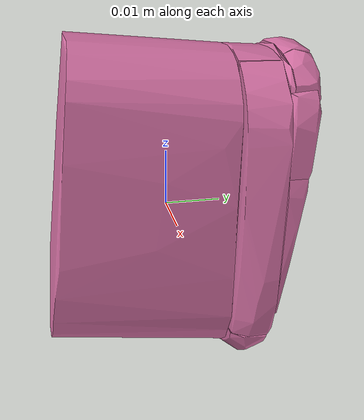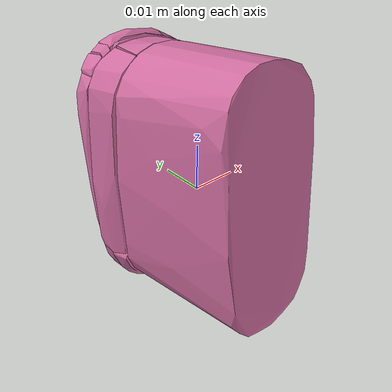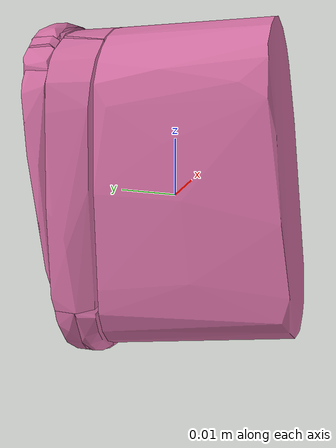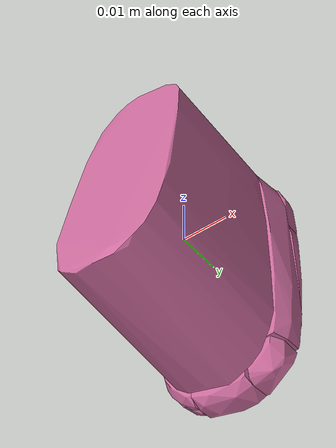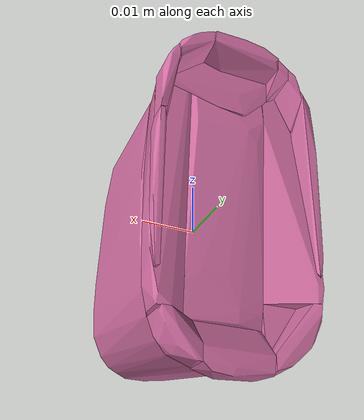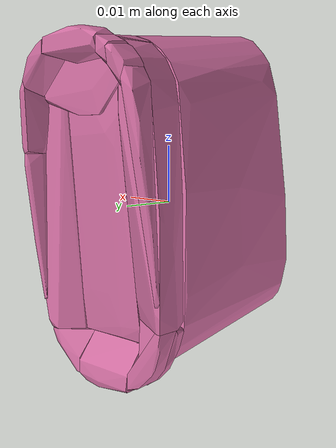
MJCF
<mujoco model="InstantSoup">
  <asset>
    <mesh file="meshes/InstantSoup/InstantSoup_0.stl" name="InstantSoup_0"/>
    <mesh file="meshes/InstantSoup/InstantSoup_1.stl" name="InstantSoup_1"/>
    <mesh file="meshes/InstantSoup/InstantSoup_2.stl" name="InstantSoup_2"/>
    <mesh file="meshes/InstantSoup/InstantSoup_3.stl" name="InstantSoup_3"/>
    <mesh file="meshes/InstantSoup/InstantSoup_4.stl" name="InstantSoup_4"/>
    <mesh file="meshes/InstantSoup/InstantSoup_5.stl" name="InstantSoup_5"/>
    <mesh file="meshes/InstantSoup/InstantSoup_6.stl" name="InstantSoup_6"/>
    <mesh file="meshes/InstantSoup/InstantSoup_7.stl" name="InstantSoup_7"/>
    <mesh file="meshes/InstantSoup/InstantSoup_8.stl" name="InstantSoup_8"/>
    <mesh file="meshes/InstantSoup/InstantSoup_9.stl" name="InstantSoup_9"/>
    <mesh file="meshes/InstantSoup/InstantSoup_10.stl" name="InstantSoup_10"/>
    <mesh file="meshes/InstantSoup/InstantSoup_11.stl" name="InstantSoup_11"/>
    <mesh file="meshes/InstantSoup/InstantSoup_12.stl" name="InstantSoup_12"/>
    <mesh file="meshes/InstantSoup/InstantSoup_13.stl" name="InstantSoup_13"/>
    <mesh file="meshes/InstantSoup/InstantSoup_14.stl" name="InstantSoup_14"/>
    <mesh file="meshes/InstantSoup/InstantSoup_15.stl" name="InstantSoup_15"/>
  </asset>
  <worldbody>
    <body>
      <body name="collision">
        <geom condim="4" density="100" friction="1.5 0.3 0.1" group="1" mesh="InstantSoup_0" pos="0 0 0" rgba="0.82 0.43 0.63 1" solimp="0.998 0.998 0.001" solref="0.002 1" type="mesh"/>
        <geom condim="4" density="100" friction="1.5 0.3 0.1" group="1" mesh="InstantSoup_1" pos="0 0 0" rgba="0.82 0.43 0.63 1" solimp="0.998 0.998 0.001" solref="0.002 1" type="mesh"/>
        <geom condim="4" density="100" friction="1.5 0.3 0.1" group="1" mesh="InstantSoup_2" pos="0 0 0" rgba="0.82 0.43 0.63 1" solimp="0.998 0.998 0.001" solref="0.002 1" type="mesh"/>
        <geom condim="4" density="100" friction="1.5 0.3 0.1" group="1" mesh="InstantSoup_3" pos="0 0 0" rgba="0.82 0.43 0.63 1" solimp="0.998 0.998 0.001" solref="0.002 1" type="mesh"/>
        <geom condim="4" density="100" friction="1.5 0.3 0.1" group="1" mesh="InstantSoup_4" pos="0 0 0" rgba="0.82 0.43 0.63 1" solimp="0.998 0.998 0.001" solref="0.002 1" type="mesh"/>
        <geom condim="4" density="100" friction="1.5 0.3 0.1" group="1" mesh="InstantSoup_5" pos="0 0 0" rgba="0.82 0.43 0.63 1" solimp="0.998 0.998 0.001" solref="0.002 1" type="mesh"/>
        <geom condim="4" density="100" friction="1.5 0.3 0.1" group="1" mesh="InstantSoup_6" pos="0 0 0" rgba="0.82 0.43 0.63 1" solimp="0.998 0.998 0.001" solref="0.002 1" type="mesh"/>
        <geom condim="4" density="100" friction="1.5 0.3 0.1" group="1" mesh="InstantSoup_7" pos="0 0 0" rgba="0.82 0.43 0.63 1" solimp="0.998 0.998 0.001" solref="0.002 1" type="mesh"/>
        <geom condim="4" density="100" friction="1.5 0.3 0.1" group="1" mesh="InstantSoup_8" pos="0 0 0" rgba="0.82 0.43 0.63 1" solimp="0.998 0.998 0.001" solref="0.002 1" type="mesh"/>
        <geom condim="4" density="100" friction="1.5 0.3 0.1" group="1" mesh="InstantSoup_9" pos="0 0 0" rgba="0.82 0.43 0.63 1" solimp="0.998 0.998 0.001" solref="0.002 1" type="mesh"/>
        <geom condim="4" density="100" friction="1.5 0.3 0.1" group="1" mesh="InstantSoup_10" pos="0 0 0" rgba="0.82 0.43 0.63 1" solimp="0.998 0.998 0.001" solref="0.002 1" type="mesh"/>
        <geom condim="4" density="100" friction="1.5 0.3 0.1" group="1" mesh="InstantSoup_11" pos="0 0 0" rgba="0.82 0.43 0.63 1" solimp="0.998 0.998 0.001" solref="0.002 1" type="mesh"/>
        <geom condim="4" density="100" friction="1.5 0.3 0.1" group="1" mesh="InstantSoup_12" pos="0 0 0" rgba="0.82 0.43 0.63 1" solimp="0.998 0.998 0.001" solref="0.002 1" type="mesh"/>
        <geom condim="4" density="100" friction="1.5 0.3 0.1" group="1" mesh="InstantSoup_13" pos="0 0 0" rgba="0.82 0.43 0.63 1" solimp="0.998 0.998 0.001" solref="0.002 1" type="mesh"/>
        <geom condim="4" density="100" friction="1.5 0.3 0.1" group="1" mesh="InstantSoup_14" pos="0 0 0" rgba="0.82 0.43 0.63 1" solimp="0.998 0.998 0.001" solref="0.002 1" type="mesh"/>
        <geom condim="4" density="100" friction="1.5 0.3 0.1" group="1" mesh="InstantSoup_15" pos="0 0 0" rgba="0.82 0.43 0.63 1" solimp="0.998 0.998 0.001" solref="0.002 1" type="mesh"/>
      </body>
      <body name="visual">
        <geom conaffinity="0" contype="0" group="0" mass="0.0001" mesh="InstantSoup_0" pos="0 0 0" rgba="0.82 0.43 0.63 1" type="mesh"/>
        <geom conaffinity="0" contype="0" group="0" mass="0.0001" mesh="InstantSoup_1" pos="0 0 0" rgba="0.82 0.43 0.63 1" type="mesh"/>
        <geom conaffinity="0" contype="0" group="0" mass="0.0001" mesh="InstantSoup_2" pos="0 0 0" rgba="0.82 0.43 0.63 1" type="mesh"/>
        <geom conaffinity="0" contype="0" group="0" mass="0.0001" mesh="InstantSoup_3" pos="0 0 0" rgba="0.82 0.43 0.63 1" type="mesh"/>
        <geom conaffinity="0" contype="0" group="0" mass="0.0001" mesh="InstantSoup_4" pos="0 0 0" rgba="0.82 0.43 0.63 1" type="mesh"/>
        <geom conaffinity="0" contype="0" group="0" mass="0.0001" mesh="InstantSoup_5" pos="0 0 0" rgba="0.82 0.43 0.63 1" type="mesh"/>
        <geom conaffinity="0" contype="0" group="0" mass="0.0001" mesh="InstantSoup_6" pos="0 0 0" rgba="0.82 0.43 0.63 1" type="mesh"/>
        <geom conaffinity="0" contype="0" group="0" mass="0.0001" mesh="InstantSoup_7" pos="0 0 0" rgba="0.82 0.43 0.63 1" type="mesh"/>
        <geom conaffinity="0" contype="0" group="0" mass="0.0001" mesh="InstantSoup_8" pos="0 0 0" rgba="0.82 0.43 0.63 1" type="mesh"/>
        <geom conaffinity="0" contype="0" group="0" mass="0.0001" mesh="InstantSoup_9" pos="0 0 0" rgba="0.82 0.43 0.63 1" type="mesh"/>
        <geom conaffinity="0" contype="0" group="0" mass="0.0001" mesh="InstantSoup_10" pos="0 0 0" rgba="0.82 0.43 0.63 1" type="mesh"/>
        <geom conaffinity="0" contype="0" group="0" mass="0.0001" mesh="InstantSoup_11" pos="0 0 0" rgba="0.82 0.43 0.63 1" type="mesh"/>
        <geom conaffinity="0" contype="0" group="0" mass="0.0001" mesh="InstantSoup_12" pos="0 0 0" rgba="0.82 0.43 0.63 1" type="mesh"/>
        <geom conaffinity="0" contype="0" group="0" mass="0.0001" mesh="InstantSoup_13" pos="0 0 0" rgba="0.82 0.43 0.63 1" type="mesh"/>
        <geom conaffinity="0" contype="0" group="0" mass="0.0001" mesh="InstantSoup_14" pos="0 0 0" rgba="0.82 0.43 0.63 1" type="mesh"/>
        <geom conaffinity="0" contype="0" group="0" mass="0.0001" mesh="InstantSoup_15" pos="0 0 0" rgba="0.82 0.43 0.63 1" type="mesh"/>
      </body>
      <site name="bottom_site" pos="0 0 -0.06" rgba="0 0 0 0" size="0.005"/>
      <site name="top_site" pos="0 0 0.04" rgba="0 0 0 0" size="0.005"/>
      <site name="horizontal_radius_site" pos="0.025 0.025 0" rgba="0 0 0 0" size="0.005"/>
    </body>
  </worldbody>
</mujoco>
